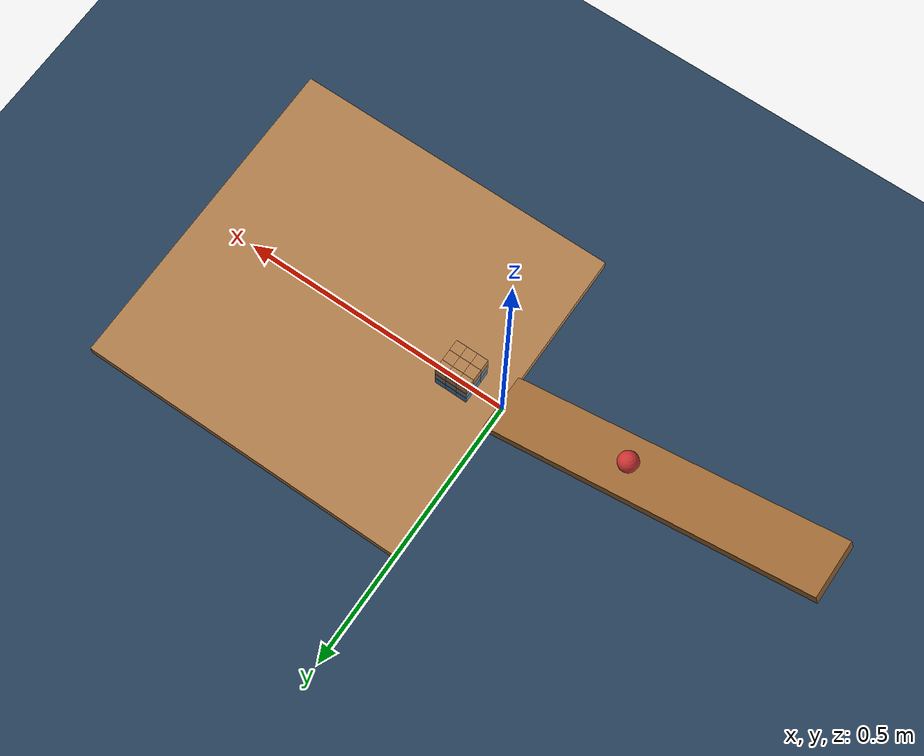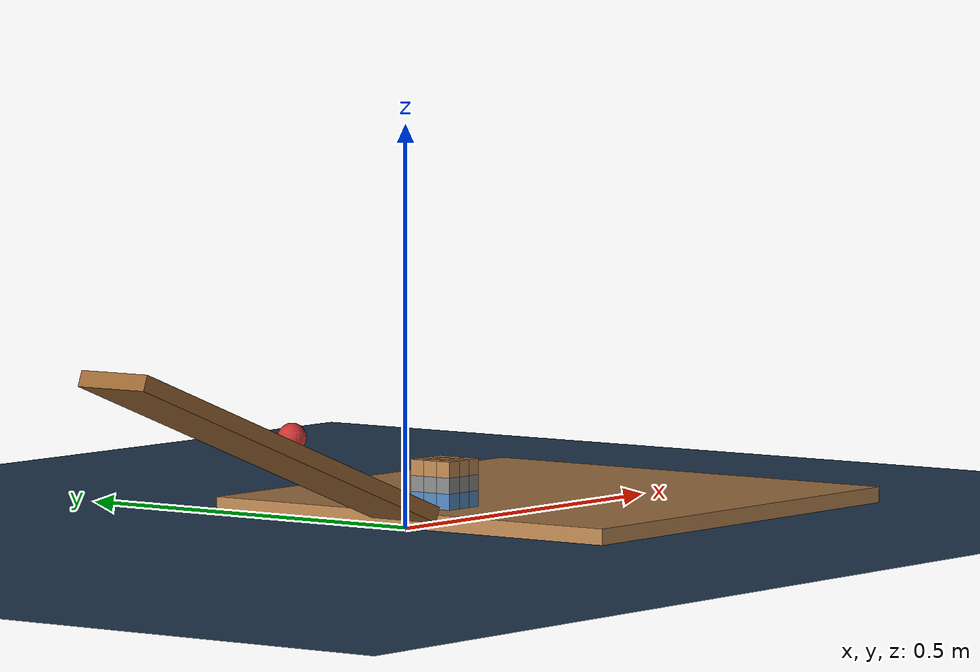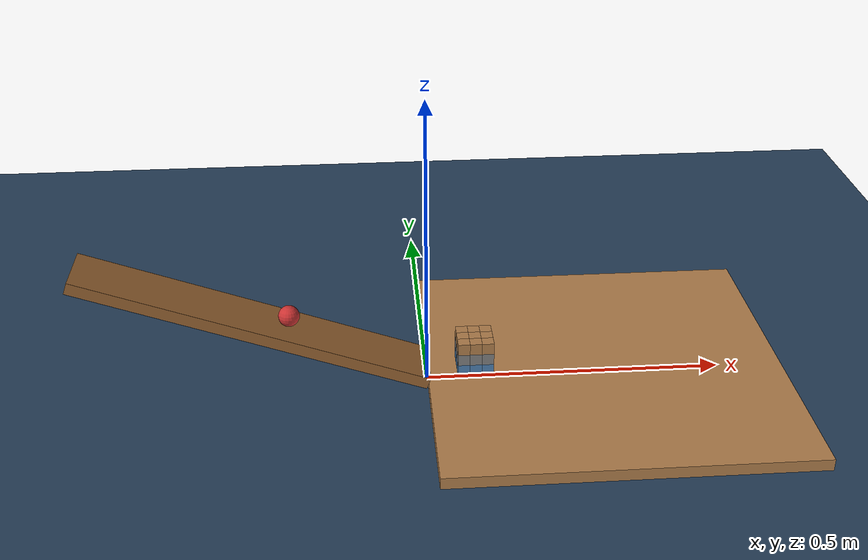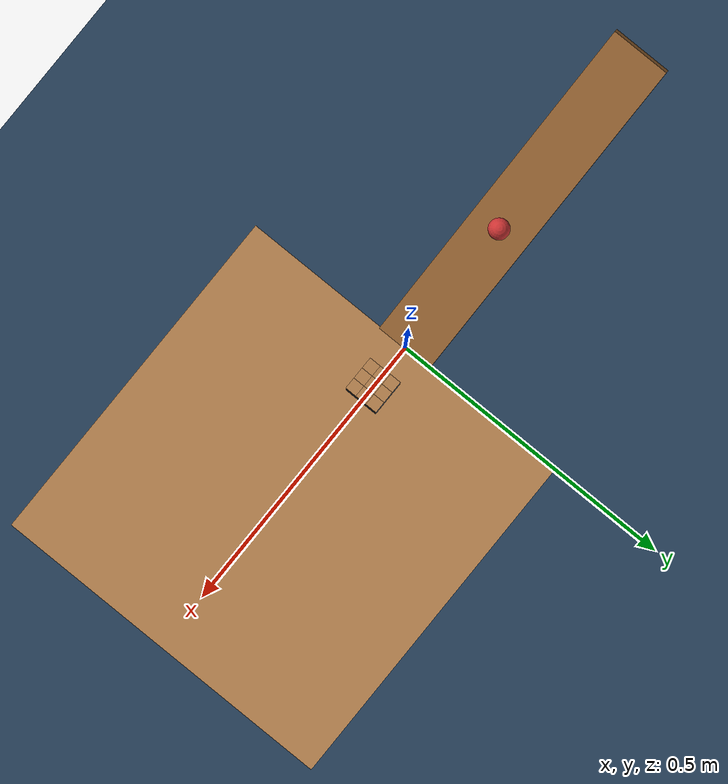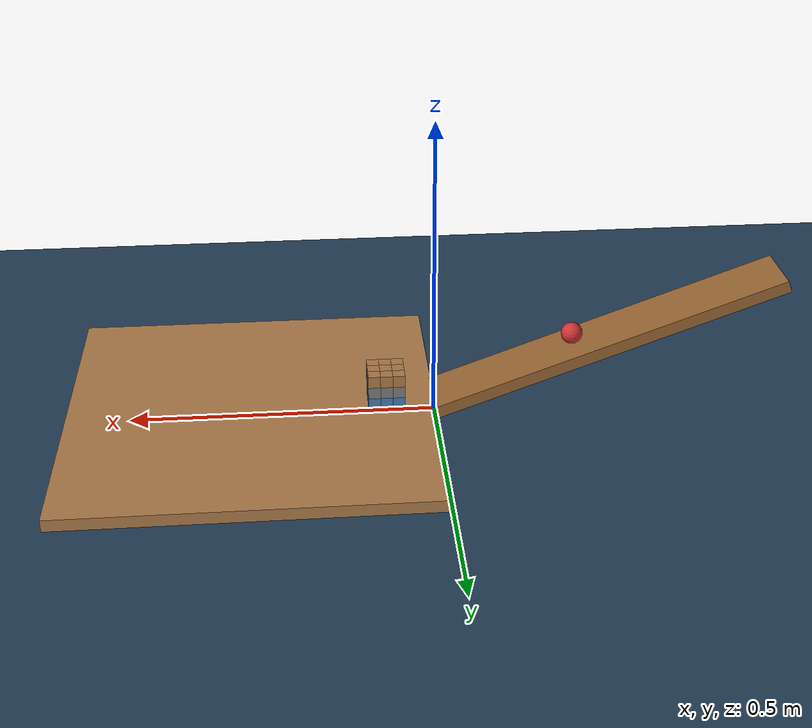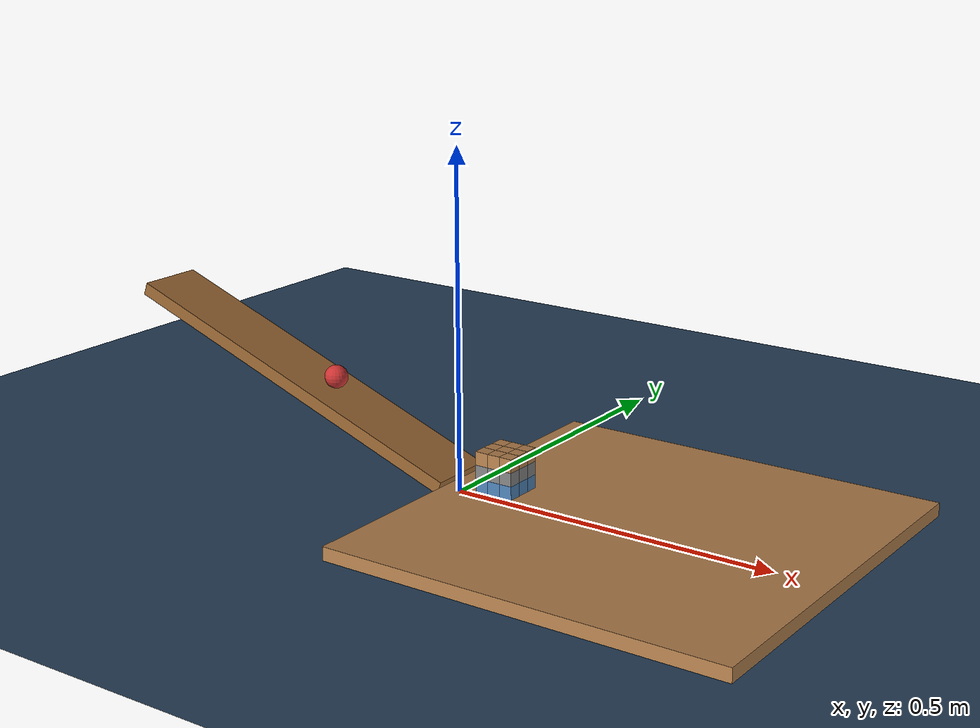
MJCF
<?xml version="1.0" encoding="utf-8"?>
<mujoco model="slope_cube_collision">
  <compiler angle="degree" coordinate="local" inertiafromgeom="true"/>

  <option timestep="0.01" iterations="100" solver="Newton" gravity="0 0 -9.81">
    <flag eulerdamp="enable"/>
  </option>

  <visual>
    <map force="0.1" zfar="30"/>
    <global offwidth="1280" offheight="720" elevation="-20" azimuth="120"/>
  </visual>

  <asset>
    <texture type="skybox" builtin="gradient" rgb1=".3 .5 .7" rgb2="0 0 0" width="32" height="512"/>
    <texture name="grid" type="2d" builtin="checker" width="512" height="512" rgb1=".1 .2 .3" rgb2=".2 .3 .4"/>
    <material name="grid" texture="grid" texrepeat="8 8" texuniform="true" reflectance=".2"/>
  </asset>

  <default>
    <!-- Armature and damping are crucial for stabilizing 5g cubes under gravity -->
    <joint damping="0.01" armature="0.001"/>
    <!-- Soften contacts to avoid solver over-correction -->
    <geom friction="0.35 0.25 0.0001" solref="0.01 1.0" solimp="0.95 0.99 0.001"/>
  </default>

  <worldbody>
    <geom name="ground_infinite" type="plane" size="20 20 0.1" pos="0 0 0" material="grid" friction="0.5 0.35 0.0001"/>
    <body name="ground_plane" pos="0.3 0.0 0.01">
      <geom type="box" size="0.3 0.3 0.01" rgba="0.7 0.5 0.3 1" friction="0.65 0.45 0.0001"/>
    </body>
    <body name="slope" pos="-0.28191 0.0 0.12261" quat="0.9848078 0 0.1736482 0">
      <geom type="box" size="0.3 0.05 0.01" rgba="0.6 0.4 0.2 1" friction="0.35 0.25 0.0001"/>
    </body>
    <body name="ball" pos="-0.22552 0.00000 0.13135">
      <geom name="ball_geom" type="sphere" size="0.0175" rgba="0.8 0.2 0.2 1" mass="0.17782" friction="0.35 0.25 0.0001"/>
      <freejoint name="ball_joint"/>
    </body>
    <body name="cube0" pos="0.06000 -0.02000 0.03010">
      <geom type="box" size="0.01000 0.01000 0.01000" rgba="0.30 0.5 0.70 1" mass="0.005"/>
      <freejoint name="cube_joint0"/>
    </body>
    <body name="cube1" pos="0.06000 0.00000 0.03010">
      <geom type="box" size="0.01000 0.01000 0.01000" rgba="0.30 0.5 0.70 1" mass="0.005"/>
      <freejoint name="cube_joint1"/>
    </body>
    <body name="cube2" pos="0.06000 0.02000 0.03010">
      <geom type="box" size="0.01000 0.01000 0.01000" rgba="0.30 0.5 0.70 1" mass="0.005"/>
      <freejoint name="cube_joint2"/>
    </body>
    <body name="cube3" pos="0.08000 -0.02000 0.03010">
      <geom type="box" size="0.01000 0.01000 0.01000" rgba="0.30 0.5 0.70 1" mass="0.005"/>
      <freejoint name="cube_joint3"/>
    </body>
    <body name="cube4" pos="0.08000 0.00000 0.03010">
      <geom type="box" size="0.01000 0.01000 0.01000" rgba="0.30 0.5 0.70 1" mass="0.005"/>
      <freejoint name="cube_joint4"/>
    </body>
    <body name="cube5" pos="0.08000 0.02000 0.03010">
      <geom type="box" size="0.01000 0.01000 0.01000" rgba="0.30 0.5 0.70 1" mass="0.005"/>
      <freejoint name="cube_joint5"/>
    </body>
    <body name="cube6" pos="0.10000 -0.02000 0.03010">
      <geom type="box" size="0.01000 0.01000 0.01000" rgba="0.30 0.5 0.70 1" mass="0.005"/>
      <freejoint name="cube_joint6"/>
    </body>
    <body name="cube7" pos="0.10000 0.00000 0.03010">
      <geom type="box" size="0.01000 0.01000 0.01000" rgba="0.30 0.5 0.70 1" mass="0.005"/>
      <freejoint name="cube_joint7"/>
    </body>
    <body name="cube8" pos="0.10000 0.02000 0.03010">
      <geom type="box" size="0.01000 0.01000 0.01000" rgba="0.30 0.5 0.70 1" mass="0.005"/>
      <freejoint name="cube_joint8"/>
    </body>
    <body name="cube9" pos="0.06000 -0.02000 0.05010">
      <geom type="box" size="0.01000 0.01000 0.01000" rgba="0.50 0.5 0.50 1" mass="0.005"/>
      <freejoint name="cube_joint9"/>
    </body>
    <body name="cube10" pos="0.06000 0.00000 0.05010">
      <geom type="box" size="0.01000 0.01000 0.01000" rgba="0.50 0.5 0.50 1" mass="0.005"/>
      <freejoint name="cube_joint10"/>
    </body>
    <body name="cube11" pos="0.06000 0.02000 0.05010">
      <geom type="box" size="0.01000 0.01000 0.01000" rgba="0.50 0.5 0.50 1" mass="0.005"/>
      <freejoint name="cube_joint11"/>
    </body>
    <body name="cube12" pos="0.08000 -0.02000 0.05010">
      <geom type="box" size="0.01000 0.01000 0.01000" rgba="0.50 0.5 0.50 1" mass="0.005"/>
      <freejoint name="cube_joint12"/>
    </body>
    <body name="cube13" pos="0.08000 0.00000 0.05010">
      <geom type="box" size="0.01000 0.01000 0.01000" rgba="0.50 0.5 0.50 1" mass="0.005"/>
      <freejoint name="cube_joint13"/>
    </body>
    <body name="cube14" pos="0.08000 0.02000 0.05010">
      <geom type="box" size="0.01000 0.01000 0.01000" rgba="0.50 0.5 0.50 1" mass="0.005"/>
      <freejoint name="cube_joint14"/>
    </body>
    <body name="cube15" pos="0.10000 -0.02000 0.05010">
      <geom type="box" size="0.01000 0.01000 0.01000" rgba="0.50 0.5 0.50 1" mass="0.005"/>
      <freejoint name="cube_joint15"/>
    </body>
    <body name="cube16" pos="0.10000 0.00000 0.05010">
      <geom type="box" size="0.01000 0.01000 0.01000" rgba="0.50 0.5 0.50 1" mass="0.005"/>
      <freejoint name="cube_joint16"/>
    </body>
    <body name="cube17" pos="0.10000 0.02000 0.05010">
      <geom type="box" size="0.01000 0.01000 0.01000" rgba="0.50 0.5 0.50 1" mass="0.005"/>
      <freejoint name="cube_joint17"/>
    </body>
    <body name="cube18" pos="0.06000 -0.02000 0.07010">
      <geom type="box" size="0.01000 0.01000 0.01000" rgba="0.70 0.5 0.30 1" mass="0.005"/>
      <freejoint name="cube_joint18"/>
    </body>
    <body name="cube19" pos="0.06000 0.00000 0.07010">
      <geom type="box" size="0.01000 0.01000 0.01000" rgba="0.70 0.5 0.30 1" mass="0.005"/>
      <freejoint name="cube_joint19"/>
    </body>
    <body name="cube20" pos="0.06000 0.02000 0.07010">
      <geom type="box" size="0.01000 0.01000 0.01000" rgba="0.70 0.5 0.30 1" mass="0.005"/>
      <freejoint name="cube_joint20"/>
    </body>
    <body name="cube21" pos="0.08000 -0.02000 0.07010">
      <geom type="box" size="0.01000 0.01000 0.01000" rgba="0.70 0.5 0.30 1" mass="0.005"/>
      <freejoint name="cube_joint21"/>
    </body>
    <body name="cube22" pos="0.08000 0.00000 0.07010">
      <geom type="box" size="0.01000 0.01000 0.01000" rgba="0.70 0.5 0.30 1" mass="0.005"/>
      <freejoint name="cube_joint22"/>
    </body>
    <body name="cube23" pos="0.08000 0.02000 0.07010">
      <geom type="box" size="0.01000 0.01000 0.01000" rgba="0.70 0.5 0.30 1" mass="0.005"/>
      <freejoint name="cube_joint23"/>
    </body>
    <body name="cube24" pos="0.10000 -0.02000 0.07010">
      <geom type="box" size="0.01000 0.01000 0.01000" rgba="0.70 0.5 0.30 1" mass="0.005"/>
      <freejoint name="cube_joint24"/>
    </body>
    <body name="cube25" pos="0.10000 0.00000 0.07010">
      <geom type="box" size="0.01000 0.01000 0.01000" rgba="0.70 0.5 0.30 1" mass="0.005"/>
      <freejoint name="cube_joint25"/>
    </body>
    <body name="cube26" pos="0.10000 0.02000 0.07010">
      <geom type="box" size="0.01000 0.01000 0.01000" rgba="0.70 0.5 0.30 1" mass="0.005"/>
      <freejoint name="cube_joint26"/>
    </body>
  </worldbody>
</mujoco>
